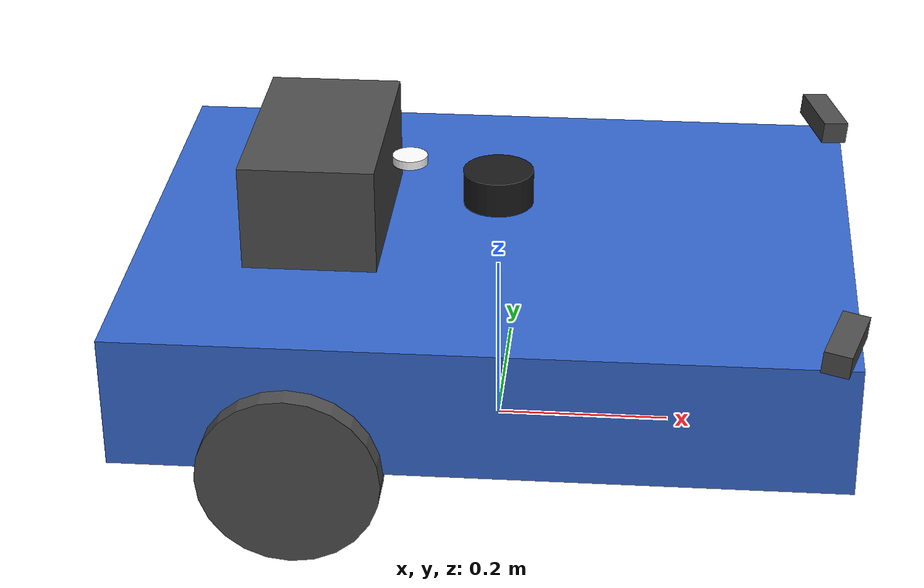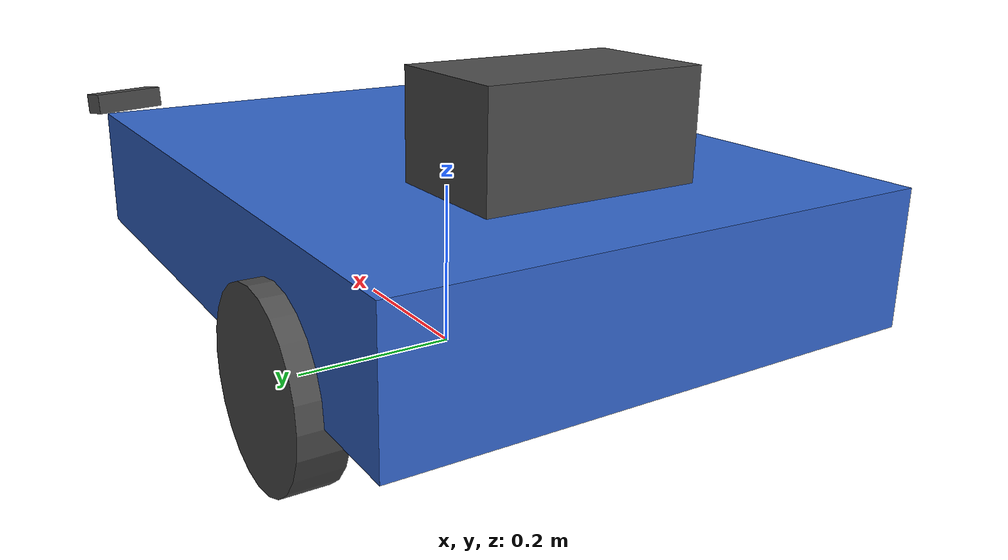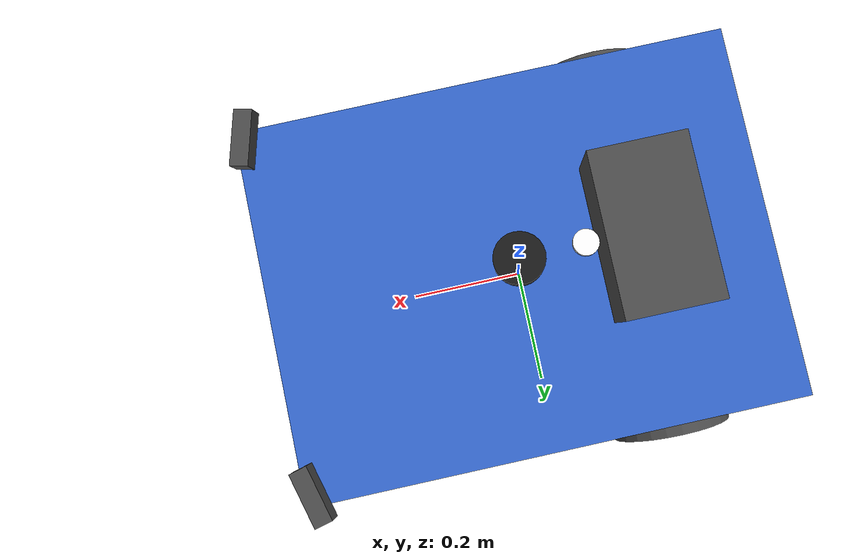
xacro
<?xml version="1.0"?>
<robot name="littleblue" xmlns:xacro="http://www.ros.org/wiki/xacro">

  <xacro:include filename="$(find littleblue_sim)/urdf/materials.xacro"/>
  <xacro:include filename="$(find littleblue_sim)/urdf/chassis.xacro"/>
  <xacro:include filename="$(find littleblue_sim)/urdf/sensors.xacro"/>
  <xacro:include filename="$(find littleblue_sim)/urdf/gazebo_plugins.xacro"/>

</robot>

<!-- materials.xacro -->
<robot xmlns:xacro="http://www.ros.org/wiki/xacro">

  <material name="blue">
    <color rgba="0.2 0.4 0.8 1.0"/>
  </material>

  <material name="dark_grey">
    <color rgba="0.3 0.3 0.3 1.0"/>
  </material>

  <material name="light_grey">
    <color rgba="0.7 0.7 0.7 1.0"/>
  </material>

  <material name="white">
    <color rgba="1.0 1.0 1.0 1.0"/>
  </material>

  <material name="black">
    <color rgba="0.1 0.1 0.1 1.0"/>
  </material>

</robot>

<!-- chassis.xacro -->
<robot xmlns:xacro="http://www.ros.org/wiki/xacro">

  <!-- Properties -->
  <xacro:property name="chassis_length" value="0.8"/>
  <xacro:property name="chassis_width" value="0.6"/>
  <xacro:property name="chassis_height" value="0.15"/>
  <xacro:property name="chassis_mass" value="20.0"/>

  <xacro:property name="wheel_radius" value="0.1"/>
  <xacro:property name="wheel_width" value="0.05"/>
  <xacro:property name="wheel_mass" value="1.0"/>
  <xacro:property name="track_width" value="0.55"/>

  <xacro:property name="caster_radius" value="0.05"/>
  <xacro:property name="caster_mass" value="0.5"/>

  <!-- Inertia macros -->
  <xacro:macro name="box_inertia" params="m x y z">
    <inertial>
      <mass value="${m}"/>
      <inertia ixx="${m*(y*y+z*z)/12}" ixy="0" ixz="0"
               iyy="${m*(x*x+z*z)/12}" iyz="0"
               izz="${m*(x*x+y*y)/12}"/>
    </inertial>
  </xacro:macro>

  <xacro:macro name="cylinder_inertia" params="m r l">
    <inertial>
      <mass value="${m}"/>
      <inertia ixx="${m*(3*r*r+l*l)/12}" ixy="0" ixz="0"
               iyy="${m*(3*r*r+l*l)/12}" iyz="0"
               izz="${m*r*r/2}"/>
    </inertial>
  </xacro:macro>

  <xacro:macro name="sphere_inertia" params="m r">
    <inertial>
      <mass value="${m}"/>
      <inertia ixx="${2*m*r*r/5}" ixy="0" ixz="0"
               iyy="${2*m*r*r/5}" iyz="0"
               izz="${2*m*r*r/5}"/>
    </inertial>
  </xacro:macro>

  <!-- Base footprint (on the ground) -->
  <link name="base_footprint"/>

  <joint name="base_joint" type="fixed">
    <parent link="base_footprint"/>
    <child link="base_link"/>
    <origin xyz="0 0 ${wheel_radius}" rpy="0 0 0"/>
  </joint>

  <!-- Chassis -->
  <link name="base_link">
    <visual>
      <geometry>
        <box size="${chassis_length} ${chassis_width} ${chassis_height}"/>
      </geometry>
      <origin xyz="0 0 ${chassis_height/2}" rpy="0 0 0"/>
      <material name="blue"/>
    </visual>
    <collision>
      <geometry>
        <box size="${chassis_length} ${chassis_width} ${chassis_height}"/>
      </geometry>
      <origin xyz="0 0 ${chassis_height/2}" rpy="0 0 0"/>
    </collision>
    <xacro:box_inertia m="${chassis_mass}" x="${chassis_length}" y="${chassis_width}" z="${chassis_height}"/>
  </link>

  <!-- Wheel macro -->
  <xacro:macro name="drive_wheel" params="prefix y_offset">
    <link name="${prefix}_wheel_link">
      <visual>
        <geometry>
          <cylinder radius="${wheel_radius}" length="${wheel_width}"/>
        </geometry>
        <material name="dark_grey"/>
      </visual>
      <collision>
        <geometry>
          <cylinder radius="${wheel_radius}" length="${wheel_width}"/>
        </geometry>
        <surface>
          <friction>
            <ode>
              <mu>1.0</mu>
              <mu2>1.0</mu2>
            </ode>
          </friction>
        </surface>
      </collision>
      <xacro:cylinder_inertia m="${wheel_mass}" r="${wheel_radius}" l="${wheel_width}"/>
    </link>

    <joint name="${prefix}_wheel_joint" type="continuous">
      <parent link="base_link"/>
      <child link="${prefix}_wheel_link"/>
      <origin xyz="${-chassis_length/4} ${y_offset} 0" rpy="${-pi/2} 0 0"/>
      <axis xyz="0 0 1"/>
      <dynamics damping="0.1" friction="0.1"/>
    </joint>

    <!-- collision sensors on wheels to detect the lane line crossing-->
    <gazebo reference="${prefix}_wheel_link">
      <sensor name="${prefix}_wheel_sensor" type="contact">
        <topic>/${prefix}_wheel_sensor</topic>
        <always_on>true</always_on>
        <update_rate>50</update_rate>
        <contact>
          <collision>${prefix}_wheel_link_collision</collision>
        </contact>
      </sensor>
    </gazebo>
  </xacro:macro>

  <xacro:drive_wheel prefix="left" y_offset="${track_width/2 + wheel_width/2}"/>
  <xacro:drive_wheel prefix="right" y_offset="${-(track_width/2 + wheel_width/2)}"/>

  <!-- Front caster -->
  <link name="caster_link">
    <visual>
      <geometry>
        <sphere radius="${caster_radius}"/>
      </geometry>
      <material name="light_grey"/>
    </visual>
    <collision>
      <geometry>
        <sphere radius="${caster_radius}"/>
      </geometry>
      <surface>
        <friction>
          <ode>
            <mu>0.01</mu>
            <mu2>0.01</mu2>
          </ode>
        </friction>
      </surface>
    </collision>
    <xacro:sphere_inertia m="${caster_mass}" r="${caster_radius}"/>
  </link>

  <joint name="caster_joint" type="continuous">
    <parent link="base_link"/>
    <child link="caster_link"/>
    <origin xyz="${chassis_length/3} 0 ${-(wheel_radius - caster_radius)}" rpy="0 0 0"/>
    <axis xyz="0 1 0"/> </joint>

  <gazebo reference="caster_link">
    <sensor name="caster_sensor" type="contact">
      <topic>/caster_sensor</topic>
      <always_on>true</always_on>
      <update_rate>50</update_rate>
      <contact>
        <collision>caster_link_collision</collision>
      </contact>
    </sensor>
  </gazebo>

  <!--Collision sensor on chassis to detect object collision-->
  <gazebo reference="base_link">
    <sensor name="chassis_sensor" type="contact">
      <topic>/chassis_sensor</topic>
      <always_on>true</always_on>
      <update_rate>50</update_rate>
      <contact>
        <collision>base_footprint_fixed_joint_lump__base_link_collision</collision>
      </contact>
    </sensor>
  </gazebo>

</robot>

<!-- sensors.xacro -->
<robot xmlns:xacro="http://www.ros.org/wiki/xacro">

  <!-- Camera pair macro: creates RGB + depth links at a lateral offset -->
  <xacro:macro name="camera_pair" params="prefix y_offset">
    <!-- RGB Camera -->
    <link name="${prefix}_camera_link">
      <visual>
        <geometry>
          <box size="0.03 0.09 0.025"/>
        </geometry>
        <material name="dark_grey"/>
      </visual>
      <collision>
        <geometry>
          <box size="0.03 0.09 0.025"/>
        </geometry>
      </collision>
      <inertial>
        <mass value="0.1"/>
        <inertia ixx="0.0001" ixy="0" ixz="0" iyy="0.0001" iyz="0" izz="0.0001"/>
      </inertial>
    </link>

    <joint name="${prefix}_camera_joint" type="fixed">
      <parent link="base_link"/>
      <child link="${prefix}_camera_link"/>
      <!-- Tilted down 5° (pitch=0.09) and outward 15° (yaw=±0.26) toward lane lines -->
      <origin xyz="${chassis_length/2 - 0.02} ${y_offset} ${chassis_height + 0.02}" rpy="0 0.09 ${0.26 * y_offset/0.28}"/>
    </joint>

    <link name="${prefix}_camera_optical_link"/>
    <joint name="${prefix}_camera_optical_joint" type="fixed">
      <parent link="${prefix}_camera_link"/>
      <child link="${prefix}_camera_optical_link"/>
      <origin xyz="0 0 0" rpy="${-pi/2} 0 ${-pi/2}"/>
    </joint>

    <!-- Depth Camera (co-located with RGB) -->
    <link name="${prefix}_depth_camera_link">
      <inertial>
        <mass value="0.01"/>
        <inertia ixx="0.00001" ixy="0" ixz="0" iyy="0.00001" iyz="0" izz="0.00001"/>
      </inertial>
    </link>

    <joint name="${prefix}_depth_camera_joint" type="fixed">
      <parent link="${prefix}_camera_link"/>
      <child link="${prefix}_depth_camera_link"/>
      <origin xyz="0 0 0" rpy="0 0 0"/>
    </joint>

    <link name="${prefix}_depth_camera_optical_link"/>
    <joint name="${prefix}_depth_camera_optical_joint" type="fixed">
      <parent link="${prefix}_depth_camera_link"/>
      <child link="${prefix}_depth_camera_optical_link"/>
      <origin xyz="0 0 0" rpy="${-pi/2} 0 ${-pi/2}"/>
    </joint>
  </xacro:macro>

  <!-- Left camera (+Y = left, chassis_width/2 - 0.02) -->
  <xacro:camera_pair prefix="left" y_offset="0.28"/>
  <!-- Right camera (-Y = right) -->
  <xacro:camera_pair prefix="right" y_offset="-0.28"/>

  <!-- 2D LiDAR (top of chassis) -->
  <link name="lidar_link">
    <visual>
      <geometry>
        <cylinder radius="0.04" length="0.04"/>
      </geometry>
      <material name="black"/>
    </visual>
    <collision>
      <geometry>
        <cylinder radius="0.04" length="0.04"/>
      </geometry>
    </collision>
    <inertial>
      <mass value="0.2"/>
      <inertia ixx="0.0001" ixy="0" ixz="0" iyy="0.0001" iyz="0" izz="0.0001"/>
    </inertial>
  </link>

  <joint name="lidar_joint" type="fixed">
    <parent link="base_link"/>
    <child link="lidar_link"/>
    <origin xyz="0 0 ${chassis_height + 0.05}" rpy="0 0 0"/>
  </joint>

  <!-- Rear electronics box — blocks ~90° of LiDAR behind the robot -->
  <link name="rear_electronics_link">
    <visual>
      <geometry>
        <box size="0.15 0.25 0.12"/>
      </geometry>
      <material name="dark_grey"/>
    </visual>
    <collision>
      <geometry>
        <box size="0.15 0.25 0.12"/>
      </geometry>
    </collision>
    <inertial>
      <mass value="0.5"/>
      <inertia ixx="0.001" ixy="0" ixz="0" iyy="0.001" iyz="0" izz="0.001"/>
    </inertial>
  </link>

  <joint name="rear_electronics_joint" type="fixed">
    <parent link="base_link"/>
    <child link="rear_electronics_link"/>
    <origin xyz="${-chassis_length/4} 0 ${chassis_height + 0.06}" rpy="0 0 0"/>
  </joint>

  <!-- IMU (chassis center) -->
  <link name="imu_link">
    <inertial>
      <mass value="0.01"/>
      <inertia ixx="0.00001" ixy="0" ixz="0" iyy="0.00001" iyz="0" izz="0.00001"/>
    </inertial>
  </link>

  <joint name="imu_joint" type="fixed">
    <parent link="base_link"/>
    <child link="imu_link"/>
    <origin xyz="0 0 ${chassis_height/2}" rpy="0 0 0"/>
  </joint>

  <!-- GPS antenna (top of chassis) -->
  <link name="gps_link">
    <visual>
      <geometry>
        <cylinder radius="0.02" length="0.01"/>
      </geometry>
      <material name="white"/>
    </visual>
    <inertial>
      <mass value="0.05"/>
      <inertia ixx="0.00001" ixy="0" ixz="0" iyy="0.00001" iyz="0" izz="0.00001"/>
    </inertial>
  </link>

  <joint name="gps_joint" type="fixed">
    <parent link="base_link"/>
    <child link="gps_link"/>
    <origin xyz="-0.1 0 ${chassis_height + 0.08}" rpy="0 0 0"/>
  </joint>

</robot>
